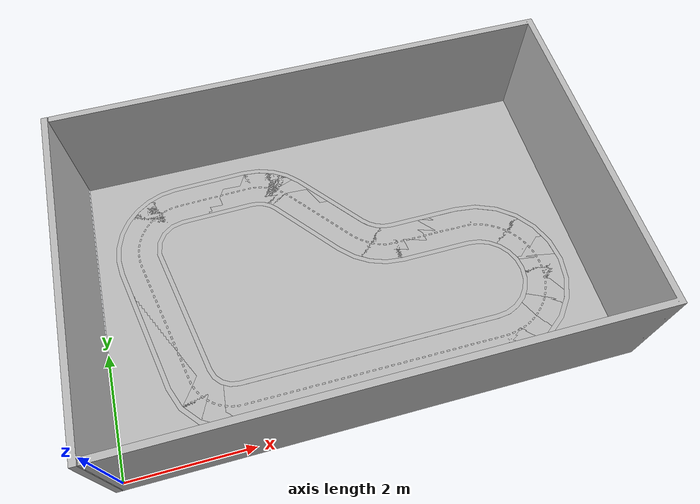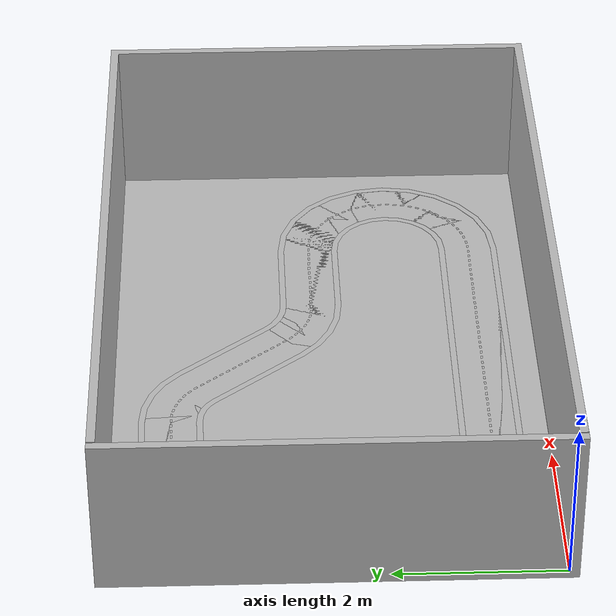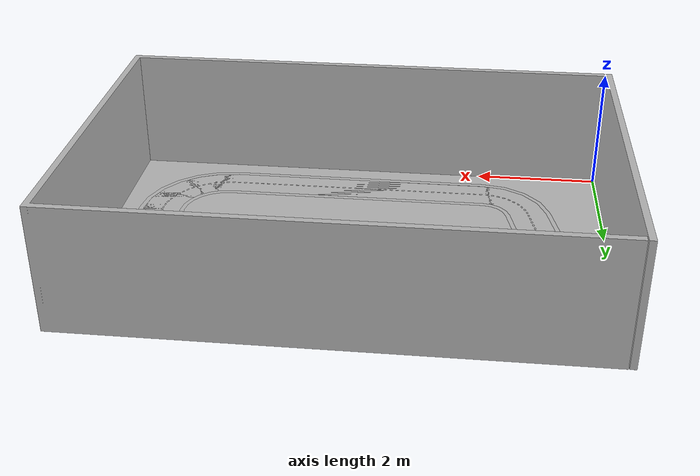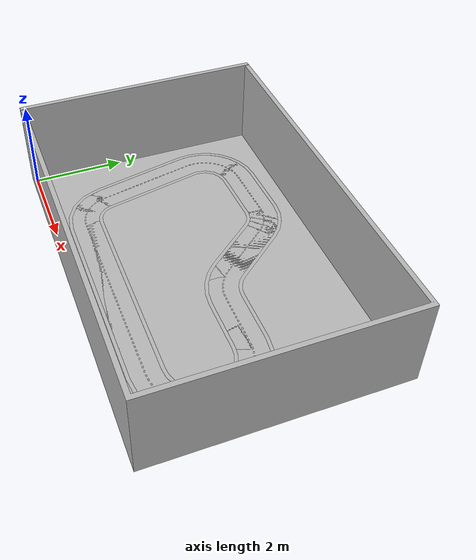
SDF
<?xml version="1.0"?>
<sdf version="1.4">
<world name="reinvent_base">

  <scene>
    <ambient>0.5 0.5 0.5 1.0</ambient>
    <shadows>0</shadows>
  </scene>

  <include>
    <uri>model://sun</uri>
    <pose>0.0 0.0 15.0 0 0 0</pose>
    <cast_shadows>false</cast_shadows>
    <attenuation>
      <constant>0.5</constant>
      <linear>0.01</linear>
      <quadratic>0.0</quadratic>
      <range>100</range>
    </attenuation>
  </include>

  <light type="point" name="Light 1">
         <pose>0 0 15 0 0 0</pose>
         <diffuse>.9 .9 .9 1</diffuse>
         <specular>.1 .1 .1 1</specular>
         <attenuation>
                <constant>0.4</constant>
                <linear>0.01</linear>
                <quadratic>0.00</quadratic>
                <range>50</range>
         </attenuation>
         <direction>0 0 -1</direction>
         <cast_shadows>false</cast_shadows>
    </light>

  <include>
    <uri>model://models/reinvent_lines_walls</uri>
    <pose>0 0 0 0 0 0</pose>
    <name>racetrack</name>
  </include>

  <include>
    <uri>model://models/reinvent_grass_asphalt</uri>
    <pose>0 0 0 0 0 0</pose>
    <name>racetrack</name>
  </include>

</world>
</sdf>

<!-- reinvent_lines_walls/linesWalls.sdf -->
<sdf version='1.4'>
  <model name="linesWalls">
    <link name="outerLinesLink">
      <visual name="visual">
        <pose>0 0 0.002 0 0 0</pose>
        <geometry>
          <mesh>
            <uri>model://meshes/reinvent/outerLines.dae</uri>
          </mesh>
        </geometry>
      </visual>
    </link>
    <link name="innerLinesLink">
      <visual name="visual">
        <pose>0 0 0.002 0 0 0</pose>
        <geometry>
          <mesh>
            <uri>model://meshes/reinvent/inner_lines.dae</uri>
          </mesh>
        </geometry>
      </visual>
    </link>
    <link name="wallsLink">
      <collision name="collision">
        <pose>0 0 0 0 0 0</pose>
        <geometry>
          <mesh>
            <uri>model://meshes/reinvent/walls.dae</uri>
          </mesh>
        </geometry>
      </collision>
      <visual name="visual">
        <pose>0 0 0 0 0 0</pose>
        <geometry>
          <mesh>
            <uri>model://meshes/reinvent/walls.dae</uri>
          </mesh>
        </geometry>
      </visual>
    </link>
    <static>1</static>
  </model>
</sdf>

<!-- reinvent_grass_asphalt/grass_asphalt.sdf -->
<sdf version='1.4'>
  <model name="grass_asphalt">
    <link name="fieldLink">
      <collision name="collision">
        <pose>0 0 0 0 0 0</pose>
        <geometry>
          <mesh>
            <uri>model://meshes/reinvent/field.dae</uri>
          </mesh>
        </geometry>
      </collision>
      <visual name="visual">
        <pose>0 0 0 0 0 0</pose>
        <geometry>
          <mesh>
            <uri>model://meshes/reinvent/field.dae</uri>
          </mesh>
        </geometry>
      </visual>
    </link>
    <link name="roadLink">
      <collision name="collision">
        <pose>0 0 0.0 0 0 0</pose>
        <geometry>
          <mesh>
            <uri>model://meshes/reinvent/road.dae</uri>
          </mesh>
        </geometry>
      </collision>
      <visual name="visual">
        <pose>0 0 0.0 0 0 0</pose>
        <geometry>
          <mesh>
            <uri>model://meshes/reinvent/road.dae</uri>
          </mesh>
        </geometry>
      </visual>
    </link>
    <static>1</static>
  </model>
</sdf>
